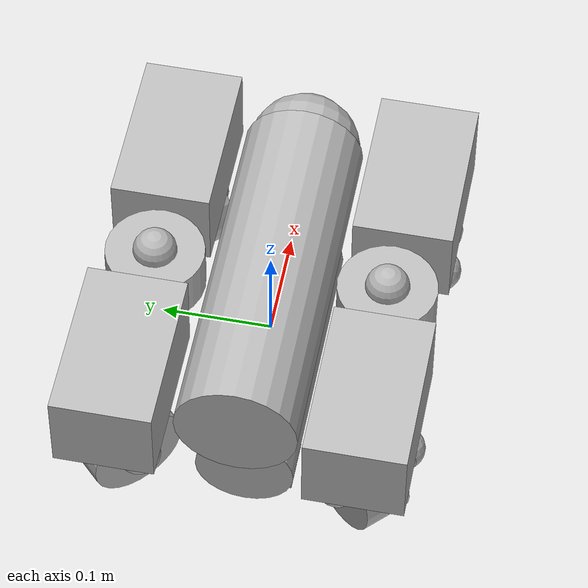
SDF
<sdf version='1.6'>
  <model name='orca'>
    <link name='base_link'>
      <pose frame=''>0 0 0 0 -0 0</pose>
      <inertial>
        <pose frame=''>0 0 0.011 0 -0 0</pose>
        <mass>10</mass>
        <inertia>
          <ixx>0.148968</ixx>
          <ixy>0</ixy>
          <ixz>0</ixz>
          <iyy>0.227806</iyy>
          <iyz>0</iyz>
          <izz>0.269245</izz>
        </inertia>
      </inertial>
      <collision name='base_link_collision'>
        <pose frame=''>0 0 0 0 -0 0</pose>
        <geometry>
          <box>
            <size>0.457 0.338 0.254</size>
          </box>
        </geometry>
        <surface>
          <contact>
            <ode/>
          </contact>
          <friction>
            <ode/>
          </friction>
        </surface>
      </collision>
      <collision name='base_link_fixed_joint_lump__camera_link_collision_1'>
        <pose frame=''>0 0 -0.2 0 -0 0</pose>
        <geometry>
          <box>
            <size>0.05 0.05 0.05</size>
          </box>
        </geometry>
        <surface>
          <contact>
            <ode/>
          </contact>
          <friction>
            <ode/>
          </friction>
        </surface>
      </collision>
      <visual name='base_link_visual'>
        <pose frame=''>0.12 0.11 0.07 0 -0 0</pose>
        <geometry>
          <box>
            <size>0.15 0.09 0.08</size>
          </box>
        </geometry>
        <material>
          <script>
            <uri>__default__</uri>
            <name>__default__</name>
          </script>
        </material>
      </visual>
      <visual name='base_link_visual_1'>
        <pose frame=''>0.12 -0.11 0.07 0 -0 0</pose>
        <geometry>
          <box>
            <size>0.15 0.09 0.08</size>
          </box>
        </geometry>
        <material>
          <script>
            <uri>__default__</uri>
            <name>__default__</name>
          </script>
        </material>
      </visual>
      <visual name='base_link_visual_2'>
        <pose frame=''>-0.12 0.11 0.07 0 -0 0</pose>
        <geometry>
          <box>
            <size>0.15 0.09 0.08</size>
          </box>
        </geometry>
        <material>
          <script>
            <uri>__default__</uri>
            <name>__default__</name>
          </script>
        </material>
      </visual>
      <visual name='base_link_visual_3'>
        <pose frame=''>-0.12 -0.11 0.07 0 -0 0</pose>
        <geometry>
          <box>
            <size>0.15 0.09 0.08</size>
          </box>
        </geometry>
        <material>
          <script>
            <uri>__default__</uri>
            <name>__default__</name>
          </script>
        </material>
      </visual>
      <visual name='base_link_visual_4'>
        <pose frame=''>0 0 0.063 3.14159 1.57079 3.14159</pose>
        <geometry>
          <cylinder>
            <length>0.32</length>
            <radius>0.055</radius>
          </cylinder>
        </geometry>
        <material>
          <script>
            <uri>__default__</uri>
            <name>__default__</name>
          </script>
        </material>
      </visual>
      <visual name='base_link_visual_5'>
        <pose frame=''>0.16 0 0.063 3.14159 1.57079 3.14159</pose>
        <geometry>
          <sphere>
            <radius>0.052</radius>
          </sphere>
        </geometry>
        <material>
          <script>
            <uri>__default__</uri>
            <name>__default__</name>
          </script>
        </material>
      </visual>
      <visual name='base_link_visual_6'>
        <pose frame=''>0 0 -0.05 3.14159 1.57079 3.14159</pose>
        <geometry>
          <cylinder>
            <length>0.25</length>
            <radius>0.045</radius>
          </cylinder>
        </geometry>
        <material>
          <script>
            <uri>__default__</uri>
            <name>__default__</name>
          </script>
        </material>
      </visual>
      <visual name='base_link_fixed_joint_lump__camera_link_visual_7'>
        <pose frame=''>0 0 -0.2 0 -0 0</pose>
        <geometry>
          <box>
            <size>0.05 0.05 0.05</size>
          </box>
        </geometry>
        <material>
          <script>
            <uri>__default__</uri>
            <name>__default__</name>
          </script>
        </material>
      </visual>
      <visual name='base_link_fixed_joint_lump__t200_link_front_left_visual_8'>
        <pose frame=''>0.15 0.09 -0.009 3.14159 1.57079 2.3562</pose>
        <geometry>
          <sphere>
            <radius>0.02</radius>
          </sphere>
        </geometry>
      </visual>
      <visual name='base_link_fixed_joint_lump__t200_link_front_left_visual_9'>
        <pose frame=''>0.100503 0.139497 -0.009 3.14159 1.57079 2.3562</pose>
        <geometry>
          <sphere>
            <radius>0.02</radius>
          </sphere>
        </geometry>
      </visual>
      <visual name='base_link_fixed_joint_lump__t200_link_front_left_visual_10'>
        <pose frame=''>0.125251 0.114749 -0.009 3.14159 1.57079 2.3562</pose>
        <geometry>
          <cylinder>
            <length>0.07</length>
            <radius>0.02</radius>
          </cylinder>
        </geometry>
      </visual>
      <visual name='base_link_fixed_joint_lump__t200_link_front_left_visual_11'>
        <pose frame=''>0.13409 0.10591 -0.009 3.14159 1.57079 2.3562</pose>
        <geometry>
          <cylinder>
            <length>0.045</length>
            <radius>0.045</radius>
          </cylinder>
        </geometry>
      </visual>
      <visual name='base_link_fixed_joint_lump__t200_link_front_right_visual_12'>
        <pose frame=''>0.15 -0.09 -0.009 -3.14159 1.57079 -2.3562</pose>
        <geometry>
          <sphere>
            <radius>0.02</radius>
          </sphere>
        </geometry>
      </visual>
      <visual name='base_link_fixed_joint_lump__t200_link_front_right_visual_13'>
        <pose frame=''>0.100503 -0.139497 -0.009 -3.14159 1.57079 -2.3562</pose>
        <geometry>
          <sphere>
            <radius>0.02</radius>
          </sphere>
        </geometry>
      </visual>
      <visual name='base_link_fixed_joint_lump__t200_link_front_right_visual_14'>
        <pose frame=''>0.125251 -0.114749 -0.009 -3.14159 1.57079 -2.3562</pose>
        <geometry>
          <cylinder>
            <length>0.07</length>
            <radius>0.02</radius>
          </cylinder>
        </geometry>
      </visual>
      <visual name='base_link_fixed_joint_lump__t200_link_front_right_visual_15'>
        <pose frame=''>0.13409 -0.10591 -0.009 -3.14159 1.57079 -2.3562</pose>
        <geometry>
          <cylinder>
            <length>0.045</length>
            <radius>0.045</radius>
          </cylinder>
        </geometry>
      </visual>
      <visual name='base_link_fixed_joint_lump__t200_link_rear_left_visual_16'>
        <pose frame=''>-0.15 0.09 -0.009 3.14159 1.57079 0.785403</pose>
        <geometry>
          <sphere>
            <radius>0.02</radius>
          </sphere>
        </geometry>
      </visual>
      <visual name='base_link_fixed_joint_lump__t200_link_rear_left_visual_17'>
        <pose frame=''>-0.100503 0.139497 -0.009 3.14159 1.57079 0.785403</pose>
        <geometry>
          <sphere>
            <radius>0.02</radius>
          </sphere>
        </geometry>
      </visual>
      <visual name='base_link_fixed_joint_lump__t200_link_rear_left_visual_18'>
        <pose frame=''>-0.125251 0.114749 -0.009 3.14159 1.57079 0.785403</pose>
        <geometry>
          <cylinder>
            <length>0.07</length>
            <radius>0.02</radius>
          </cylinder>
        </geometry>
      </visual>
      <visual name='base_link_fixed_joint_lump__t200_link_rear_left_visual_19'>
        <pose frame=''>-0.13409 0.10591 -0.009 3.14159 1.57079 0.785403</pose>
        <geometry>
          <cylinder>
            <length>0.045</length>
            <radius>0.045</radius>
          </cylinder>
        </geometry>
      </visual>
      <visual name='base_link_fixed_joint_lump__t200_link_rear_right_visual_20'>
        <pose frame=''>-0.15 -0.09 -0.009 3.14159 1.57079 -0.785403</pose>
        <geometry>
          <sphere>
            <radius>0.02</radius>
          </sphere>
        </geometry>
      </visual>
      <visual name='base_link_fixed_joint_lump__t200_link_rear_right_visual_21'>
        <pose frame=''>-0.100503 -0.139497 -0.009 3.14159 1.57079 -0.785403</pose>
        <geometry>
          <sphere>
            <radius>0.02</radius>
          </sphere>
        </geometry>
      </visual>
      <visual name='base_link_fixed_joint_lump__t200_link_rear_right_visual_22'>
        <pose frame=''>-0.125251 -0.114749 -0.009 3.14159 1.57079 -0.785403</pose>
        <geometry>
          <cylinder>
            <length>0.07</length>
            <radius>0.02</radius>
          </cylinder>
        </geometry>
      </visual>
      <visual name='base_link_fixed_joint_lump__t200_link_rear_right_visual_23'>
        <pose frame=''>-0.13409 -0.10591 -0.009 3.14159 1.57079 -0.785403</pose>
        <geometry>
          <cylinder>
            <length>0.045</length>
            <radius>0.045</radius>
          </cylinder>
        </geometry>
      </visual>
      <visual name='base_link_fixed_joint_lump__t200_link_vertical_left_visual_24'>
        <pose frame=''>0 0.105 0.09 0 -0 0</pose>
        <geometry>
          <sphere>
            <radius>0.02</radius>
          </sphere>
        </geometry>
      </visual>
      <visual name='base_link_fixed_joint_lump__t200_link_vertical_left_visual_25'>
        <pose frame=''>0 0.105 0.02 0 -0 0</pose>
        <geometry>
          <sphere>
            <radius>0.02</radius>
          </sphere>
        </geometry>
      </visual>
      <visual name='base_link_fixed_joint_lump__t200_link_vertical_left_visual_26'>
        <pose frame=''>0 0.105 0.055 0 -0 0</pose>
        <geometry>
          <cylinder>
            <length>0.07</length>
            <radius>0.02</radius>
          </cylinder>
        </geometry>
      </visual>
      <visual name='base_link_fixed_joint_lump__t200_link_vertical_left_visual_27'>
        <pose frame=''>0 0.105 0.0675 0 -0 0</pose>
        <geometry>
          <cylinder>
            <length>0.045</length>
            <radius>0.045</radius>
          </cylinder>
        </geometry>
      </visual>
      <visual name='base_link_fixed_joint_lump__t200_link_vertical_right_visual_28'>
        <pose frame=''>0 -0.105 0.09 0 -0 0</pose>
        <geometry>
          <sphere>
            <radius>0.02</radius>
          </sphere>
        </geometry>
      </visual>
      <visual name='base_link_fixed_joint_lump__t200_link_vertical_right_visual_29'>
        <pose frame=''>0 -0.105 0.02 0 -0 0</pose>
        <geometry>
          <sphere>
            <radius>0.02</radius>
          </sphere>
        </geometry>
      </visual>
      <visual name='base_link_fixed_joint_lump__t200_link_vertical_right_visual_30'>
        <pose frame=''>0 -0.105 0.055 0 -0 0</pose>
        <geometry>
          <cylinder>
            <length>0.07</length>
            <radius>0.02</radius>
          </cylinder>
        </geometry>
      </visual>
      <visual name='base_link_fixed_joint_lump__t200_link_vertical_right_visual_31'>
        <pose frame=''>0 -0.105 0.0675 0 -0 0</pose>
        <geometry>
          <cylinder>
            <length>0.045</length>
            <radius>0.045</radius>
          </cylinder>
        </geometry>
      </visual>
      <velocity_decay/>
      <sensor name='barometer_sensor' type='altimeter'>
        <update_rate>50</update_rate>
        <plugin name='OrcaBarometerPlugin' filename='libOrcaBarometerPlugin.so'>
          <ros_topic>/barometer</ros_topic>
          <fluid_density>1029</fluid_density>
        </plugin>
      </sensor>
      <velocity_decay/>
      <gravity>1</gravity>
      <sensor name='imu_sensor' type='imu'>
        <update_rate>50</update_rate>
        <plugin name='OrcaIMUPlugin' filename='libOrcaIMUPlugin.so'/>
        <pose frame=''>0 0 0 0 -0 0</pose>
      </sensor>
      <gravity>1</gravity>
      <velocity_decay/>
      <sensor name='camera1' type='camera'>
        <update_rate>30</update_rate>
        <camera name='head'>
          <horizontal_fov>1.39626</horizontal_fov>
          <image>
            <width>800</width>
            <height>800</height>
            <format>R8G8B8</format>
          </image>
          <clip>
            <near>0.02</near>
            <far>300</far>
          </clip>
          <noise>
            <type>gaussian</type>
            <mean>0</mean>
            <stddev>0.007</stddev>
          </noise>
        </camera>
        <plugin name='camera_controller' filename='libgazebo_ros_camera.so'>
          <alwaysOn>1</alwaysOn>
          <updateRate>0.0</updateRate>
          <cameraName>orca/camera1</cameraName>
          <imageTopicName>image_raw</imageTopicName>
          <cameraInfoTopicName>camera_info</cameraInfoTopicName>
          <frameName>camera_link</frameName>
          <hackBaseline>0.07</hackBaseline>
          <distortionK1>0.0</distortionK1>
          <distortionK2>0.0</distortionK2>
          <distortionK3>0.0</distortionK3>
          <distortionT1>0.0</distortionT1>
          <distortionT2>0.0</distortionT2>
        </plugin>
        <pose frame=''>0 0 -0.2 0 1.57079 0</pose>
      </sensor>
    </link>
    <plugin name='OrcaBuoyancyPlugin' filename='libOrcaBuoyancyPlugin.so'>
      <fluid_density>1029</fluid_density>
      <surface>10</surface>
      <link name='base_link'>
        <center_of_volume>0 0 0.06</center_of_volume>
        <volume>0.01</volume>
      </link>
    </plugin>
    <plugin name='OrcaDragPlugin' filename='libOrcaDragPlugin.so'>
      <link name='base_link'>
        <center_of_mass>0 0 0.011</center_of_mass>
        <tether_attach>-0.25 0 -0.009</tether_attach>
        <tether_drag>0</tether_drag>
        <surface>10</surface>
      </link>
    </plugin>
    <plugin name='OrcaThrusterPlugin' filename='libOrcaThrusterPlugin.so'>
      <link_name>orca::base_link</link_name>
      <ros_topic>/orca_base/control</ros_topic>
      <thruster name='front_right'>
        <pos_force>50</pos_force>
        <neg_force>40</neg_force>
        <origin rpy='0 1.57079632679 0.785398163397' xyz='0.15 -0.09 -0.009'/>
      </thruster>
      <thruster name='front_left'>
        <pos_force>50</pos_force>
        <neg_force>40</neg_force>
        <origin rpy='0 1.57079632679 -0.785398163397' xyz='0.15 0.09 -0.009'/>
      </thruster>
      <thruster name='rear_right'>
        <pos_force>-40</pos_force>
        <neg_force>-50</neg_force>
        <origin rpy='0 1.57079632679 2.35619449019' xyz='-0.15 -0.09 -0.009'/>
      </thruster>
      <thruster name='rear_left'>
        <pos_force>-40</pos_force>
        <neg_force>-50</neg_force>
        <origin rpy='0 1.57079632679 -2.35619449019' xyz='-0.15 0.09 -0.009'/>
      </thruster>
      <thruster name='vertical_right'>
        <pos_force>50</pos_force>
        <neg_force>40</neg_force>
        <origin rpy='0 0 0' xyz='0 -0.105 0.09'/>
      </thruster>
      <thruster name='vertical_left'>
        <pos_force>-40</pos_force>
        <neg_force>-50</neg_force>
        <origin rpy='0 0 0' xyz='0 0.105 0.09'/>
      </thruster>
    </plugin>
    <plugin name='OrcaGPSPlugin' filename='libOrcaGPSPlugin.so'>
      <link name='base_link'>
        <ros_topic>/gps</ros_topic>
        <mast_height>1</mast_height>
        <surface>10</surface>
      </link>
    </plugin>
    <static>0</static>
    <plugin name='OrcaGroundTruthPlugin' filename='libOrcaGroundTruthPlugin.so'>
      <link name='base_link'/>
      <ros_topic>/gps</ros_topic>
      <surface>10</surface>
    </plugin>
  </model>
</sdf>
